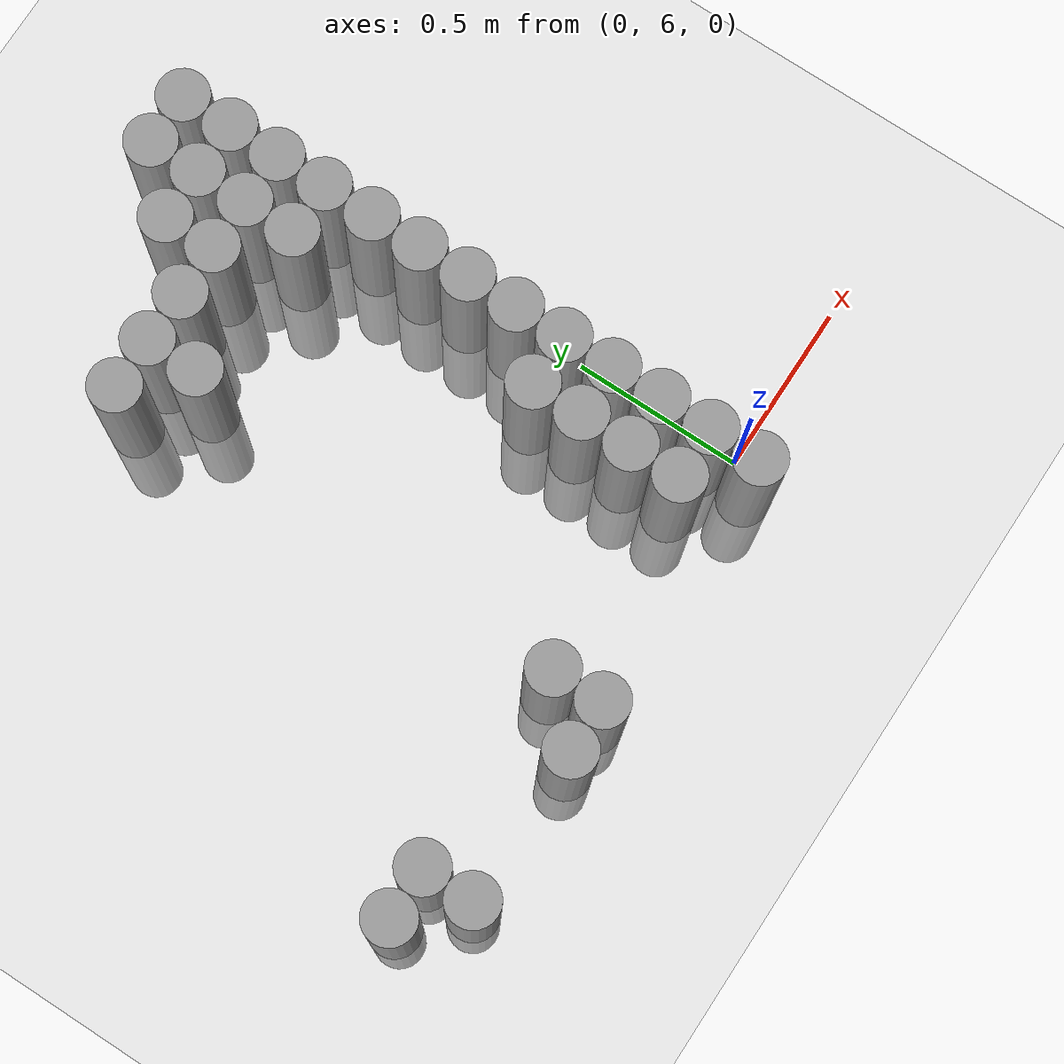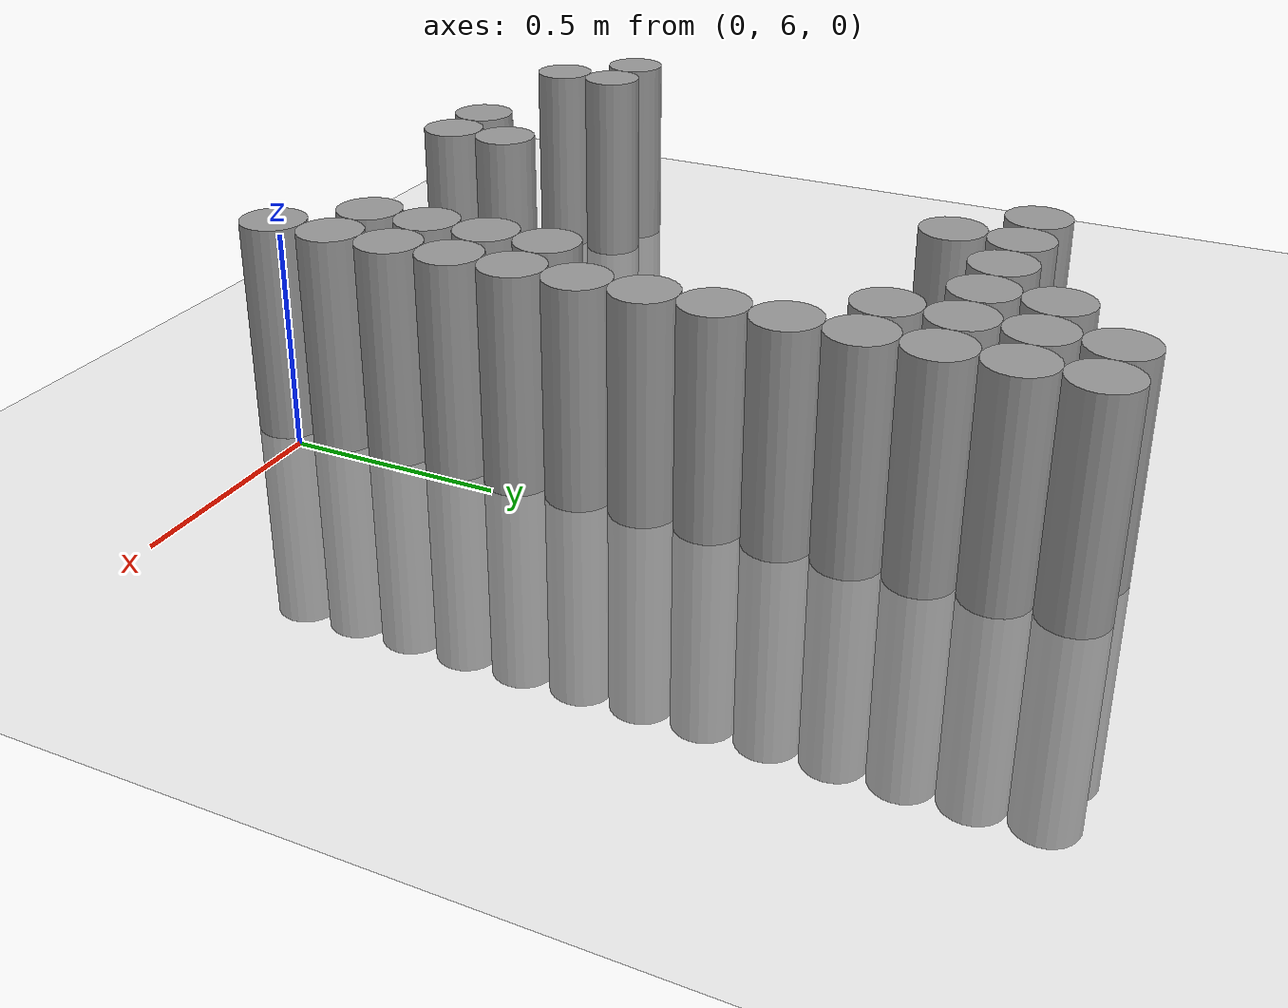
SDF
<sdf version="1.6">
 <world name="default">
  <model name="ground_plane">
   <static>1</static>
   <link name="link">
    <collision name="collision">
     <geometry><plane><normal>0 0 1</normal><size>100 100</size></plane></geometry>
     <surface><friction><ode><mu>100</mu><mu2>50</mu2></ode></friction></surface>
    </collision>
    <visual name="visual">
     <cast_shadows>0</cast_shadows>
     <geometry><plane><normal>0 0 1</normal><size>100 100</size></plane></geometry>
     <material>
      <script><uri>file://media/materials/scripts/gazebo.material</uri><name>Gazebo/Grey</name></script>
     </material>
    </visual>
   </link>
  </model>
  <model name="unit_cylinder_183">
   <pose>-1.575000 6.075000 0.000000 0.000000 0.000000 0.000000</pose>
   <link name="link">
    <inertial>
     <mass>1</mass>
     <inertia><ixx>0.145833</ixx><ixy>0</ixy><ixz>0</ixz><iyy>0.145833</iyy><iyz>0</iyz><izz>0.125</izz></inertia>
    </inertial>
    <collision name="collision">
     <geometry><cylinder><radius>0.075000</radius><length>1</length></cylinder></geometry>
    </collision>
    <visual name="visual">
     <geometry><cylinder><radius>0.075000</radius><length>1</length></cylinder></geometry>
     <material>
      <script><name>Gazebo/Grey</name><uri>file://media/materials/scripts/gazebo.material</uri></script>
     </material>
    </visual>
   </link>
  </model>
  <model name="unit_cylinder_188">
   <pose>-1.425000 5.925000 0.000000 0.000000 0.000000 0.000000</pose>
   <link name="link">
    <inertial>
     <mass>1</mass>
     <inertia><ixx>0.145833</ixx><ixy>0</ixy><ixz>0</ixz><iyy>0.145833</iyy><iyz>0</iyz><izz>0.125</izz></inertia>
    </inertial>
    <collision name="collision">
     <geometry><cylinder><radius>0.075000</radius><length>1</length></cylinder></geometry>
    </collision>
    <visual name="visual">
     <geometry><cylinder><radius>0.075000</radius><length>1</length></cylinder></geometry>
     <material>
      <script><name>Gazebo/Grey</name><uri>file://media/materials/scripts/gazebo.material</uri></script>
     </material>
    </visual>
   </link>
  </model>
  <model name="unit_cylinder_189">
   <pose>-1.425000 6.075000 0.000000 0.000000 0.000000 0.000000</pose>
   <link name="link">
    <inertial>
     <mass>1</mass>
     <inertia><ixx>0.145833</ixx><ixy>0</ixy><ixz>0</ixz><iyy>0.145833</iyy><iyz>0</iyz><izz>0.125</izz></inertia>
    </inertial>
    <collision name="collision">
     <geometry><cylinder><radius>0.075000</radius><length>1</length></cylinder></geometry>
    </collision>
    <visual name="visual">
     <geometry><cylinder><radius>0.075000</radius><length>1</length></cylinder></geometry>
     <material>
      <script><name>Gazebo/Grey</name><uri>file://media/materials/scripts/gazebo.material</uri></script>
     </material>
    </visual>
   </link>
  </model>
  <model name="unit_cylinder_199">
   <pose>-0.975000 5.925000 0.000000 0.000000 0.000000 0.000000</pose>
   <link name="link">
    <inertial>
     <mass>1</mass>
     <inertia><ixx>0.145833</ixx><ixy>0</ixy><ixz>0</ixz><iyy>0.145833</iyy><iyz>0</iyz><izz>0.125</izz></inertia>
    </inertial>
    <collision name="collision">
     <geometry><cylinder><radius>0.075000</radius><length>1</length></cylinder></geometry>
    </collision>
    <visual name="visual">
     <geometry><cylinder><radius>0.075000</radius><length>1</length></cylinder></geometry>
     <material>
      <script><name>Gazebo/Grey</name><uri>file://media/materials/scripts/gazebo.material</uri></script>
     </material>
    </visual>
   </link>
  </model>
  <model name="unit_cylinder_200">
   <pose>-0.825000 5.925000 0.000000 0.000000 0.000000 0.000000</pose>
   <link name="link">
    <inertial>
     <mass>1</mass>
     <inertia><ixx>0.145833</ixx><ixy>0</ixy><ixz>0</ixz><iyy>0.145833</iyy><iyz>0</iyz><izz>0.125</izz></inertia>
    </inertial>
    <collision name="collision">
     <geometry><cylinder><radius>0.075000</radius><length>1</length></cylinder></geometry>
    </collision>
    <visual name="visual">
     <geometry><cylinder><radius>0.075000</radius><length>1</length></cylinder></geometry>
     <material>
      <script><name>Gazebo/Grey</name><uri>file://media/materials/scripts/gazebo.material</uri></script>
     </material>
    </visual>
   </link>
  </model>
  <model name="unit_cylinder_201">
   <pose>-0.825000 6.075000 0.000000 0.000000 0.000000 0.000000</pose>
   <link name="link">
    <inertial>
     <mass>1</mass>
     <inertia><ixx>0.145833</ixx><ixy>0</ixy><ixz>0</ixz><iyy>0.145833</iyy><iyz>0</iyz><izz>0.125</izz></inertia>
    </inertial>
    <collision name="collision">
     <geometry><cylinder><radius>0.075000</radius><length>1</length></cylinder></geometry>
    </collision>
    <visual name="visual">
     <geometry><cylinder><radius>0.075000</radius><length>1</length></cylinder></geometry>
     <material>
      <script><name>Gazebo/Grey</name><uri>file://media/materials/scripts/gazebo.material</uri></script>
     </material>
    </visual>
   </link>
  </model>
  <model name="unit_cylinder_202">
   <pose>-0.825000 7.425000 0.000000 0.000000 0.000000 0.000000</pose>
   <link name="link">
    <inertial>
     <mass>1</mass>
     <inertia><ixx>0.145833</ixx><ixy>0</ixy><ixz>0</ixz><iyy>0.145833</iyy><iyz>0</iyz><izz>0.125</izz></inertia>
    </inertial>
    <collision name="collision">
     <geometry><cylinder><radius>0.075000</radius><length>1</length></cylinder></geometry>
    </collision>
    <visual name="visual">
     <geometry><cylinder><radius>0.075000</radius><length>1</length></cylinder></geometry>
     <material>
      <script><name>Gazebo/Grey</name><uri>file://media/materials/scripts/gazebo.material</uri></script>
     </material>
    </visual>
   </link>
  </model>
  <model name="unit_cylinder_203">
   <pose>-0.675000 7.275000 0.000000 0.000000 0.000000 0.000000</pose>
   <link name="link">
    <inertial>
     <mass>1</mass>
     <inertia><ixx>0.145833</ixx><ixy>0</ixy><ixz>0</ixz><iyy>0.145833</iyy><iyz>0</iyz><izz>0.125</izz></inertia>
    </inertial>
    <collision name="collision">
     <geometry><cylinder><radius>0.075000</radius><length>1</length></cylinder></geometry>
    </collision>
    <visual name="visual">
     <geometry><cylinder><radius>0.075000</radius><length>1</length></cylinder></geometry>
     <material>
      <script><name>Gazebo/Grey</name><uri>file://media/materials/scripts/gazebo.material</uri></script>
     </material>
    </visual>
   </link>
  </model>
  <model name="unit_cylinder_204">
   <pose>-0.675000 7.425000 0.000000 0.000000 0.000000 0.000000</pose>
   <link name="link">
    <inertial>
     <mass>1</mass>
     <inertia><ixx>0.145833</ixx><ixy>0</ixy><ixz>0</ixz><iyy>0.145833</iyy><iyz>0</iyz><izz>0.125</izz></inertia>
    </inertial>
    <collision name="collision">
     <geometry><cylinder><radius>0.075000</radius><length>1</length></cylinder></geometry>
    </collision>
    <visual name="visual">
     <geometry><cylinder><radius>0.075000</radius><length>1</length></cylinder></geometry>
     <material>
      <script><name>Gazebo/Grey</name><uri>file://media/materials/scripts/gazebo.material</uri></script>
     </material>
    </visual>
   </link>
  </model>
  <model name="unit_cylinder_206">
   <pose>-0.525000 7.425000 0.000000 0.000000 0.000000 0.000000</pose>
   <link name="link">
    <inertial>
     <mass>1</mass>
     <inertia><ixx>0.145833</ixx><ixy>0</ixy><ixz>0</ixz><iyy>0.145833</iyy><iyz>0</iyz><izz>0.125</izz></inertia>
    </inertial>
    <collision name="collision">
     <geometry><cylinder><radius>0.075000</radius><length>1</length></cylinder></geometry>
    </collision>
    <visual name="visual">
     <geometry><cylinder><radius>0.075000</radius><length>1</length></cylinder></geometry>
     <material>
      <script><name>Gazebo/Grey</name><uri>file://media/materials/scripts/gazebo.material</uri></script>
     </material>
    </visual>
   </link>
  </model>
  <model name="unit_cylinder_209">
   <pose>-0.375000 7.425000 0.000000 0.000000 0.000000 0.000000</pose>
   <link name="link">
    <inertial>
     <mass>1</mass>
     <inertia><ixx>0.145833</ixx><ixy>0</ixy><ixz>0</ixz><iyy>0.145833</iyy><iyz>0</iyz><izz>0.125</izz></inertia>
    </inertial>
    <collision name="collision">
     <geometry><cylinder><radius>0.075000</radius><length>1</length></cylinder></geometry>
    </collision>
    <visual name="visual">
     <geometry><cylinder><radius>0.075000</radius><length>1</length></cylinder></geometry>
     <material>
      <script><name>Gazebo/Grey</name><uri>file://media/materials/scripts/gazebo.material</uri></script>
     </material>
    </visual>
   </link>
  </model>
  <model name="unit_cylinder_210">
   <pose>-0.375000 7.575000 0.000000 0.000000 0.000000 0.000000</pose>
   <link name="link">
    <inertial>
     <mass>1</mass>
     <inertia><ixx>0.145833</ixx><ixy>0</ixy><ixz>0</ixz><iyy>0.145833</iyy><iyz>0</iyz><izz>0.125</izz></inertia>
    </inertial>
    <collision name="collision">
     <geometry><cylinder><radius>0.075000</radius><length>1</length></cylinder></geometry>
    </collision>
    <visual name="visual">
     <geometry><cylinder><radius>0.075000</radius><length>1</length></cylinder></geometry>
     <material>
      <script><name>Gazebo/Grey</name><uri>file://media/materials/scripts/gazebo.material</uri></script>
     </material>
    </visual>
   </link>
  </model>
  <model name="unit_cylinder_216">
   <pose>-0.225000 6.075000 0.000000 0.000000 0.000000 0.000000</pose>
   <link name="link">
    <inertial>
     <mass>1</mass>
     <inertia><ixx>0.145833</ixx><ixy>0</ixy><ixz>0</ixz><iyy>0.145833</iyy><iyz>0</iyz><izz>0.125</izz></inertia>
    </inertial>
    <collision name="collision">
     <geometry><cylinder><radius>0.075000</radius><length>1</length></cylinder></geometry>
    </collision>
    <visual name="visual">
     <geometry><cylinder><radius>0.075000</radius><length>1</length></cylinder></geometry>
     <material>
      <script><name>Gazebo/Grey</name><uri>file://media/materials/scripts/gazebo.material</uri></script>
     </material>
    </visual>
   </link>
  </model>
  <model name="unit_cylinder_217">
   <pose>-0.225000 6.225000 0.000000 0.000000 0.000000 0.000000</pose>
   <link name="link">
    <inertial>
     <mass>1</mass>
     <inertia><ixx>0.145833</ixx><ixy>0</ixy><ixz>0</ixz><iyy>0.145833</iyy><iyz>0</iyz><izz>0.125</izz></inertia>
    </inertial>
    <collision name="collision">
     <geometry><cylinder><radius>0.075000</radius><length>1</length></cylinder></geometry>
    </collision>
    <visual name="visual">
     <geometry><cylinder><radius>0.075000</radius><length>1</length></cylinder></geometry>
     <material>
      <script><name>Gazebo/Grey</name><uri>file://media/materials/scripts/gazebo.material</uri></script>
     </material>
    </visual>
   </link>
  </model>
  <model name="unit_cylinder_218">
   <pose>-0.225000 6.375000 0.000000 0.000000 0.000000 0.000000</pose>
   <link name="link">
    <inertial>
     <mass>1</mass>
     <inertia><ixx>0.145833</ixx><ixy>0</ixy><ixz>0</ixz><iyy>0.145833</iyy><iyz>0</iyz><izz>0.125</izz></inertia>
    </inertial>
    <collision name="collision">
     <geometry><cylinder><radius>0.075000</radius><length>1</length></cylinder></geometry>
    </collision>
    <visual name="visual">
     <geometry><cylinder><radius>0.075000</radius><length>1</length></cylinder></geometry>
     <material>
      <script><name>Gazebo/Grey</name><uri>file://media/materials/scripts/gazebo.material</uri></script>
     </material>
    </visual>
   </link>
  </model>
  <model name="unit_cylinder_219">
   <pose>-0.225000 6.525000 0.000000 0.000000 0.000000 0.000000</pose>
   <link name="link">
    <inertial>
     <mass>1</mass>
     <inertia><ixx>0.145833</ixx><ixy>0</ixy><ixz>0</ixz><iyy>0.145833</iyy><iyz>0</iyz><izz>0.125</izz></inertia>
    </inertial>
    <collision name="collision">
     <geometry><cylinder><radius>0.075000</radius><length>1</length></cylinder></geometry>
    </collision>
    <visual name="visual">
     <geometry><cylinder><radius>0.075000</radius><length>1</length></cylinder></geometry>
     <material>
      <script><name>Gazebo/Grey</name><uri>file://media/materials/scripts/gazebo.material</uri></script>
     </material>
    </visual>
   </link>
  </model>
  <model name="unit_cylinder_220">
   <pose>-0.225000 7.275000 0.000000 0.000000 0.000000 0.000000</pose>
   <link name="link">
    <inertial>
     <mass>1</mass>
     <inertia><ixx>0.145833</ixx><ixy>0</ixy><ixz>0</ixz><iyy>0.145833</iyy><iyz>0</iyz><izz>0.125</izz></inertia>
    </inertial>
    <collision name="collision">
     <geometry><cylinder><radius>0.075000</radius><length>1</length></cylinder></geometry>
    </collision>
    <visual name="visual">
     <geometry><cylinder><radius>0.075000</radius><length>1</length></cylinder></geometry>
     <material>
      <script><name>Gazebo/Grey</name><uri>file://media/materials/scripts/gazebo.material</uri></script>
     </material>
    </visual>
   </link>
  </model>
  <model name="unit_cylinder_221">
   <pose>-0.225000 7.425000 0.000000 0.000000 0.000000 0.000000</pose>
   <link name="link">
    <inertial>
     <mass>1</mass>
     <inertia><ixx>0.145833</ixx><ixy>0</ixy><ixz>0</ixz><iyy>0.145833</iyy><iyz>0</iyz><izz>0.125</izz></inertia>
    </inertial>
    <collision name="collision">
     <geometry><cylinder><radius>0.075000</radius><length>1</length></cylinder></geometry>
    </collision>
    <visual name="visual">
     <geometry><cylinder><radius>0.075000</radius><length>1</length></cylinder></geometry>
     <material>
      <script><name>Gazebo/Grey</name><uri>file://media/materials/scripts/gazebo.material</uri></script>
     </material>
    </visual>
   </link>
  </model>
  <model name="unit_cylinder_222">
   <pose>-0.225000 7.575000 0.000000 0.000000 0.000000 0.000000</pose>
   <link name="link">
    <inertial>
     <mass>1</mass>
     <inertia><ixx>0.145833</ixx><ixy>0</ixy><ixz>0</ixz><iyy>0.145833</iyy><iyz>0</iyz><izz>0.125</izz></inertia>
    </inertial>
    <collision name="collision">
     <geometry><cylinder><radius>0.075000</radius><length>1</length></cylinder></geometry>
    </collision>
    <visual name="visual">
     <geometry><cylinder><radius>0.075000</radius><length>1</length></cylinder></geometry>
     <material>
      <script><name>Gazebo/Grey</name><uri>file://media/materials/scripts/gazebo.material</uri></script>
     </material>
    </visual>
   </link>
  </model>
  <model name="unit_cylinder_223">
   <pose>-0.225000 7.725000 0.000000 0.000000 0.000000 0.000000</pose>
   <link name="link">
    <inertial>
     <mass>1</mass>
     <inertia><ixx>0.145833</ixx><ixy>0</ixy><ixz>0</ixz><iyy>0.145833</iyy><iyz>0</iyz><izz>0.125</izz></inertia>
    </inertial>
    <collision name="collision">
     <geometry><cylinder><radius>0.075000</radius><length>1</length></cylinder></geometry>
    </collision>
    <visual name="visual">
     <geometry><cylinder><radius>0.075000</radius><length>1</length></cylinder></geometry>
     <material>
      <script><name>Gazebo/Grey</name><uri>file://media/materials/scripts/gazebo.material</uri></script>
     </material>
    </visual>
   </link>
  </model>
  <model name="unit_cylinder_236">
   <pose>-0.075000 5.925000 0.000000 0.000000 0.000000 0.000000</pose>
   <link name="link">
    <inertial>
     <mass>1</mass>
     <inertia><ixx>0.145833</ixx><ixy>0</ixy><ixz>0</ixz><iyy>0.145833</iyy><iyz>0</iyz><izz>0.125</izz></inertia>
    </inertial>
    <collision name="collision">
     <geometry><cylinder><radius>0.075000</radius><length>1</length></cylinder></geometry>
    </collision>
    <visual name="visual">
     <geometry><cylinder><radius>0.075000</radius><length>1</length></cylinder></geometry>
     <material>
      <script><name>Gazebo/Grey</name><uri>file://media/materials/scripts/gazebo.material</uri></script>
     </material>
    </visual>
   </link>
  </model>
  <model name="unit_cylinder_237">
   <pose>-0.075000 6.075000 0.000000 0.000000 0.000000 0.000000</pose>
   <link name="link">
    <inertial>
     <mass>1</mass>
     <inertia><ixx>0.145833</ixx><ixy>0</ixy><ixz>0</ixz><iyy>0.145833</iyy><iyz>0</iyz><izz>0.125</izz></inertia>
    </inertial>
    <collision name="collision">
     <geometry><cylinder><radius>0.075000</radius><length>1</length></cylinder></geometry>
    </collision>
    <visual name="visual">
     <geometry><cylinder><radius>0.075000</radius><length>1</length></cylinder></geometry>
     <material>
      <script><name>Gazebo/Grey</name><uri>file://media/materials/scripts/gazebo.material</uri></script>
     </material>
    </visual>
   </link>
  </model>
  <model name="unit_cylinder_238">
   <pose>-0.075000 6.225000 0.000000 0.000000 0.000000 0.000000</pose>
   <link name="link">
    <inertial>
     <mass>1</mass>
     <inertia><ixx>0.145833</ixx><ixy>0</ixy><ixz>0</ixz><iyy>0.145833</iyy><iyz>0</iyz><izz>0.125</izz></inertia>
    </inertial>
    <collision name="collision">
     <geometry><cylinder><radius>0.075000</radius><length>1</length></cylinder></geometry>
    </collision>
    <visual name="visual">
     <geometry><cylinder><radius>0.075000</radius><length>1</length></cylinder></geometry>
     <material>
      <script><name>Gazebo/Grey</name><uri>file://media/materials/scripts/gazebo.material</uri></script>
     </material>
    </visual>
   </link>
  </model>
  <model name="unit_cylinder_239">
   <pose>-0.075000 6.375000 0.000000 0.000000 0.000000 0.000000</pose>
   <link name="link">
    <inertial>
     <mass>1</mass>
     <inertia><ixx>0.145833</ixx><ixy>0</ixy><ixz>0</ixz><iyy>0.145833</iyy><iyz>0</iyz><izz>0.125</izz></inertia>
    </inertial>
    <collision name="collision">
     <geometry><cylinder><radius>0.075000</radius><length>1</length></cylinder></geometry>
    </collision>
    <visual name="visual">
     <geometry><cylinder><radius>0.075000</radius><length>1</length></cylinder></geometry>
     <material>
      <script><name>Gazebo/Grey</name><uri>file://media/materials/scripts/gazebo.material</uri></script>
     </material>
    </visual>
   </link>
  </model>
  <model name="unit_cylinder_240">
   <pose>-0.075000 6.525000 0.000000 0.000000 0.000000 0.000000</pose>
   <link name="link">
    <inertial>
     <mass>1</mass>
     <inertia><ixx>0.145833</ixx><ixy>0</ixy><ixz>0</ixz><iyy>0.145833</iyy><iyz>0</iyz><izz>0.125</izz></inertia>
    </inertial>
    <collision name="collision">
     <geometry><cylinder><radius>0.075000</radius><length>1</length></cylinder></geometry>
    </collision>
    <visual name="visual">
     <geometry><cylinder><radius>0.075000</radius><length>1</length></cylinder></geometry>
     <material>
      <script><name>Gazebo/Grey</name><uri>file://media/materials/scripts/gazebo.material</uri></script>
     </material>
    </visual>
   </link>
  </model>
  <model name="unit_cylinder_241">
   <pose>-0.075000 6.675000 0.000000 0.000000 0.000000 0.000000</pose>
   <link name="link">
    <inertial>
     <mass>1</mass>
     <inertia><ixx>0.145833</ixx><ixy>0</ixy><ixz>0</ixz><iyy>0.145833</iyy><iyz>0</iyz><izz>0.125</izz></inertia>
    </inertial>
    <collision name="collision">
     <geometry><cylinder><radius>0.075000</radius><length>1</length></cylinder></geometry>
    </collision>
    <visual name="visual">
     <geometry><cylinder><radius>0.075000</radius><length>1</length></cylinder></geometry>
     <material>
      <script><name>Gazebo/Grey</name><uri>file://media/materials/scripts/gazebo.material</uri></script>
     </material>
    </visual>
   </link>
  </model>
  <model name="unit_cylinder_242">
   <pose>-0.075000 6.825000 0.000000 0.000000 0.000000 0.000000</pose>
   <link name="link">
    <inertial>
     <mass>1</mass>
     <inertia><ixx>0.145833</ixx><ixy>0</ixy><ixz>0</ixz><iyy>0.145833</iyy><iyz>0</iyz><izz>0.125</izz></inertia>
    </inertial>
    <collision name="collision">
     <geometry><cylinder><radius>0.075000</radius><length>1</length></cylinder></geometry>
    </collision>
    <visual name="visual">
     <geometry><cylinder><radius>0.075000</radius><length>1</length></cylinder></geometry>
     <material>
      <script><name>Gazebo/Grey</name><uri>file://media/materials/scripts/gazebo.material</uri></script>
     </material>
    </visual>
   </link>
  </model>
  <model name="unit_cylinder_243">
   <pose>-0.075000 6.975000 0.000000 0.000000 0.000000 0.000000</pose>
   <link name="link">
    <inertial>
     <mass>1</mass>
     <inertia><ixx>0.145833</ixx><ixy>0</ixy><ixz>0</ixz><iyy>0.145833</iyy><iyz>0</iyz><izz>0.125</izz></inertia>
    </inertial>
    <collision name="collision">
     <geometry><cylinder><radius>0.075000</radius><length>1</length></cylinder></geometry>
    </collision>
    <visual name="visual">
     <geometry><cylinder><radius>0.075000</radius><length>1</length></cylinder></geometry>
     <material>
      <script><name>Gazebo/Grey</name><uri>file://media/materials/scripts/gazebo.material</uri></script>
     </material>
    </visual>
   </link>
  </model>
  <model name="unit_cylinder_244">
   <pose>-0.075000 7.125000 0.000000 0.000000 0.000000 0.000000</pose>
   <link name="link">
    <inertial>
     <mass>1</mass>
     <inertia><ixx>0.145833</ixx><ixy>0</ixy><ixz>0</ixz><iyy>0.145833</iyy><iyz>0</iyz><izz>0.125</izz></inertia>
    </inertial>
    <collision name="collision">
     <geometry><cylinder><radius>0.075000</radius><length>1</length></cylinder></geometry>
    </collision>
    <visual name="visual">
     <geometry><cylinder><radius>0.075000</radius><length>1</length></cylinder></geometry>
     <material>
      <script><name>Gazebo/Grey</name><uri>file://media/materials/scripts/gazebo.material</uri></script>
     </material>
    </visual>
   </link>
  </model>
  <model name="unit_cylinder_245">
   <pose>-0.075000 7.275000 0.000000 0.000000 0.000000 0.000000</pose>
   <link name="link">
    <inertial>
     <mass>1</mass>
     <inertia><ixx>0.145833</ixx><ixy>0</ixy><ixz>0</ixz><iyy>0.145833</iyy><iyz>0</iyz><izz>0.125</izz></inertia>
    </inertial>
    <collision name="collision">
     <geometry><cylinder><radius>0.075000</radius><length>1</length></cylinder></geometry>
    </collision>
    <visual name="visual">
     <geometry><cylinder><radius>0.075000</radius><length>1</length></cylinder></geometry>
     <material>
      <script><name>Gazebo/Grey</name><uri>file://media/materials/scripts/gazebo.material</uri></script>
     </material>
    </visual>
   </link>
  </model>
  <model name="unit_cylinder_246">
   <pose>-0.075000 7.425000 0.000000 0.000000 0.000000 0.000000</pose>
   <link name="link">
    <inertial>
     <mass>1</mass>
     <inertia><ixx>0.145833</ixx><ixy>0</ixy><ixz>0</ixz><iyy>0.145833</iyy><iyz>0</iyz><izz>0.125</izz></inertia>
    </inertial>
    <collision name="collision">
     <geometry><cylinder><radius>0.075000</radius><length>1</length></cylinder></geometry>
    </collision>
    <visual name="visual">
     <geometry><cylinder><radius>0.075000</radius><length>1</length></cylinder></geometry>
     <material>
      <script><name>Gazebo/Grey</name><uri>file://media/materials/scripts/gazebo.material</uri></script>
     </material>
    </visual>
   </link>
  </model>
  <model name="unit_cylinder_247">
   <pose>-0.075000 7.575000 0.000000 0.000000 0.000000 0.000000</pose>
   <link name="link">
    <inertial>
     <mass>1</mass>
     <inertia><ixx>0.145833</ixx><ixy>0</ixy><ixz>0</ixz><iyy>0.145833</iyy><iyz>0</iyz><izz>0.125</izz></inertia>
    </inertial>
    <collision name="collision">
     <geometry><cylinder><radius>0.075000</radius><length>1</length></cylinder></geometry>
    </collision>
    <visual name="visual">
     <geometry><cylinder><radius>0.075000</radius><length>1</length></cylinder></geometry>
     <material>
      <script><name>Gazebo/Grey</name><uri>file://media/materials/scripts/gazebo.material</uri></script>
     </material>
    </visual>
   </link>
  </model>
  <model name="unit_cylinder_248">
   <pose>-0.075000 7.725000 0.000000 0.000000 0.000000 0.000000</pose>
   <link name="link">
    <inertial>
     <mass>1</mass>
     <inertia><ixx>0.145833</ixx><ixy>0</ixy><ixz>0</ixz><iyy>0.145833</iyy><iyz>0</iyz><izz>0.125</izz></inertia>
    </inertial>
    <collision name="collision">
     <geometry><cylinder><radius>0.075000</radius><length>1</length></cylinder></geometry>
    </collision>
    <visual name="visual">
     <geometry><cylinder><radius>0.075000</radius><length>1</length></cylinder></geometry>
     <material>
      <script><name>Gazebo/Grey</name><uri>file://media/materials/scripts/gazebo.material</uri></script>
     </material>
    </visual>
   </link>
  </model>
 </world>
</sdf>
